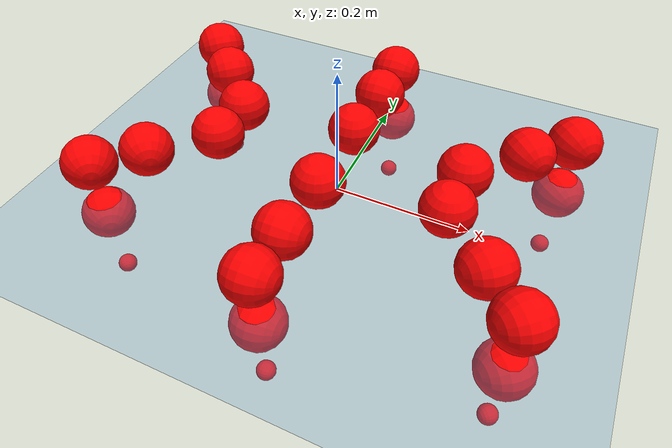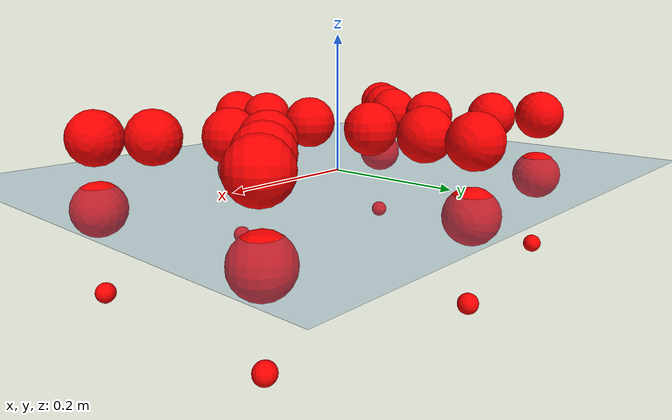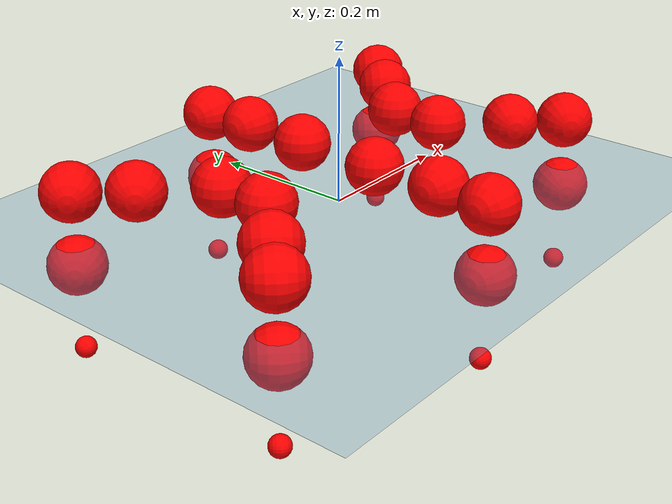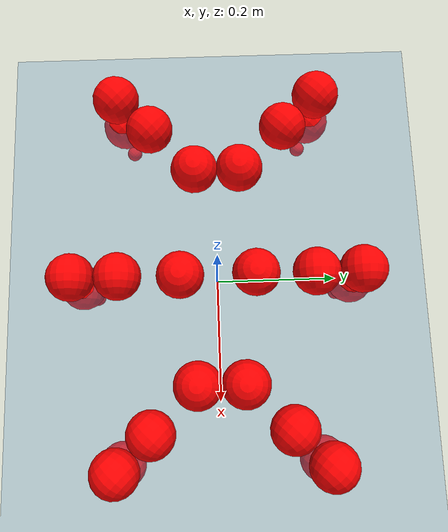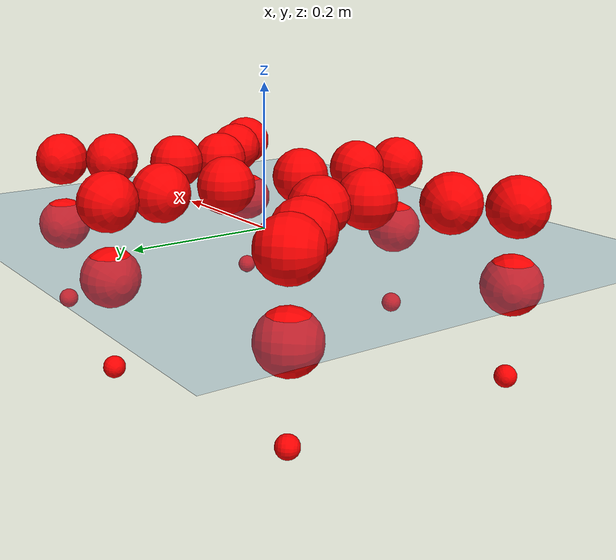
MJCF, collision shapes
<mujoco model="Golem">
  <compiler angle="radian" assetdir="assets" balanceinertia="true" inertiafromgeom="false"/>

  <option timestep="0.005" density="1.2" viscosity="2e-05"/>

  <size nkey="1"/>

  <visual>
    <quality shadowsize="8192"/>
    <map shadowclip="0.5"/>
  </visual>

  <default>
    <default class="/">
      <joint armature="0.01" damping="0.01" frictionloss="0.01"/>
      <geom contype="0" conaffinity="0" group="1" solref="-1000 -80"/>
      <site size="0.01 0.005 0.005" group="5"/>
      <general forcelimited="true" biastype="affine" gainprm="25" biasprm="0 -25 -0.5"/>
      <default class="visual">
        <geom type="mesh" group="2"/>
      </default>
      <default class="collision">
        <geom group="3"/>
      </default>
      <default class="foot">
        <geom size="0.01 0 0" condim="6" group="4" priority="1" solimp="0.015 1 0.01"/>
      </default>
      <default class="reward_collision_sphere">
        <geom group="5" rgba="1 0 0 1"/>
      </default>
    </default>
  </default>

  <asset>
    <texture type="skybox" colorspace="auto" name="//unnamed_texture_0" builtin="gradient" rgb1="0.95 0.95 0.95" rgb2="0.95 0.95 0.95" width="100" height="600"/>
    <texture type="2d" colorspace="auto" name="texplane" builtin="checker" rgb1="0.345 0.575 0.748" rgb2="0.345 0.575 0.748" markrgb="1 1 1" width="512" height="512"/>
    <material name="MatPlane" class="/" texture="texplane" texuniform="true" texrepeat="2 2" specular="0.9"/>
    <mesh name="body" class="/" file="body.stl" scale="0.001 0.001 0.001"/>
    <mesh name="coxa" class="/" file="coxa.stl" scale="0.001 0.001 0.001"/>
    <mesh name="femur" class="/" file="femur.stl" scale="0.001 0.001 0.001"/>
    <mesh name="tibia" class="/" file="tibia.stl" scale="0.001 0.001 0.001"/>
    <mesh name="tarsus" class="/" file="tarsus.stl" scale="0.001 0.001 0.001"/>
  </asset>

  <worldbody>
    <geom name="floor" class="/" size="100 100 0.125" type="plane" group="0" material="MatPlane"/>
    <light name="toplight_shadow" class="/" pos="0 0 5" dir="0.0990148 0.0990148 -0.990148" type="directional" ambient="0.04 0.04 0.04" diffuse="0.55 0.55 0.55" specular="0.12 0.12 0.12"/>
    <light name="toplight_fill" class="/" pos="0 0 5" dir="0.0990148 0.0990148 -0.990148" type="directional" castshadow="false" ambient="0.04 0.04 0.04" diffuse="0.3 0.3 0.3" specular="0.08 0.08 0.08"/>
    <body name="trunk" pos="-0.000743719 0.00223059 0.000474455" quat="1 5.48106e-05 -8.41368e-05 1.28664e-05">
      <inertial pos="0.000718907 8.64877e-05 -0.00535267" quat="0.999998 0.00123472 0.00125443 -0.000765942" mass="3.50069" diaginertia="0.0179737 0.00202802 0.0131653"/>
      <joint name="//unnamed_joint_0" type="free"/>
      <geom name="//unnamed_geom_1" class="/" pos="0 0 0.0677265" quat="1 0 0 0" type="mesh" rgba="0.9 0.9 0.9 1" mesh="body"/>
      <site name="imu" class="/" pos="0.145662 -0.00406092 0.105428" size="0.00967122"/>
      <camera name="track" class="/" pos="0 -1.44504 0" quat="0.707107 0.707107 0 0" mode="trackcom"/>
      <camera name="ego_camera" class="/" pos="0.14568 0 0.105823" quat="-0.5 -0.5 0.5 0.5"/>
      <body name="coxa_RR" pos="-0.199354 -0.0588691 0.0705425" quat="0.382319 -0.000559968 -0.000614315 -0.92403">
        <inertial pos="0.00019236 -0.0024734 0.00295866" quat="1 4.24734e-05 -5.70978e-06 3.46668e-05" mass="0.184576" diaginertia="0.0176811 0.00198597 0.0132362"/>
        <joint name="coxa_joint_RR" class="/" pos="0 0 0" axis="-0.00445033 0.00155451 -0.999989" range="-3.10908 3.14011" armature="0.00981558" damping="0.0112288" frictionloss="0.00985267"/>
        <geom name="//unnamed_geom_2" class="/" type="mesh" rgba="0.2 0.2 0.2 1" mesh="coxa"/>
        <geom name="//unnamed_geom_3" class="reward_collision_sphere" size="0.0386849" pos="-0.0336185 0 0"/>
        <body name="femur_RR" pos="0.0691682 0.000657549 -0.00103176" quat="0.500008 -0.50031 0.500381 0.499301">
          <inertial pos="-0.00171453 0.000186089 0.000943703" quat="1 0.00014016 0.000478574 -0.000350675" mass="0.182762" diaginertia="0.0178784 0.00200496 0.0134788"/>
          <joint name="femur_joint_RR" class="/" pos="0 0 0" axis="-0.000118784 0.00304811 -0.999995" range="-3.15713 3.14587" armature="0.00910776" damping="0.00521343" frictionloss="0.00972502"/>
          <geom name="//unnamed_geom_4" class="/" type="mesh" rgba="0.9 0.9 0.9 1" mesh="femur"/>
          <geom name="//unnamed_geom_5" class="reward_collision_sphere" size="0.0386849"/>
          <body name="tibia_RR" pos="0.00118151 -0.0787546 0.00037578" quat="6.51605e-05 1 9.28433e-05 -4.5135e-05">
            <inertial pos="-0.000332227 0.000275019 -0.00100751" quat="1 0.000839323 -6.75951e-05 -0.000518666" mass="0.177592" diaginertia="0.0176421 0.00200957 0.0137023"/>
            <joint name="tibia_joint_RR" class="/" pos="0 0 0" axis="0.00246362 0.00583391 0.99998" range="-3.1347 3.0877" armature="0.0100404" damping="0.0133565" frictionloss="0.00944523"/>
            <geom name="//unnamed_geom_6" class="/" type="mesh" rgba="0.2 0.2 0.2 1" mesh="tibia"/>
            <geom name="//unnamed_geom_7" class="reward_collision_sphere" size="0.0386849"/>
            <body name="tarsus_RR" pos="0.098581 -0.00170069 -0.00109905" quat="1 -1.91312e-05 1.25968e-05 -1.68333e-05">
              <inertial pos="0.0702679 0.00314345 -0.00194275" quat="0.499481 0.500582 0.500445 0.49949" mass="0.187169" diaginertia="0.0180694 0.00207177 0.0136909"/>
              <joint name="tarsus_joint_RR" class="/" pos="0 0 0" axis="0.000225013 -0.00333108 0.999994" range="-3.08887 3.12969" armature="0.00924756" damping="0.0403592" frictionloss="0.00967336"/>
              <geom name="//unnamed_geom_8" class="/" type="mesh" rgba="0.9 0.9 0.9 1" mesh="tarsus"/>
              <geom name="foot_1" class="foot" size="0.00934489" pos="0.125509 0 0" quat="0 -0.707107 0 0.707107"/>
              <geom name="//unnamed_geom_10" class="reward_collision_sphere" size="0.0386849"/>
              <geom name="//unnamed_geom_11" class="reward_collision_sphere" size="0.0145068" pos="0.120466 0 0"/>
              <site name="foot_1" class="foot" pos="0.125509 0 0" quat="0 -0.707107 0 0.707107" size="0.00967122"/>
            </body>
          </body>
        </body>
      </body>
      <body name="coxa_RM" pos="-7.11728e-05 -0.0954363 0.0664192" quat="0.70714 -0.000105801 -0.000152431 -0.707073">
        <inertial pos="0.000396754 -0.00010673 -0.000731267" quat="0.999997 -1.32668e-05 -0.00202186 -0.000967636" mass="0.176657" diaginertia="0.0174523 0.00193088 0.0131035"/>
        <joint name="coxa_joint_RM" class="/" pos="0 0 0" axis="0.00100821 -0.00343764 -0.999994" range="-3.12114 3.15893" armature="0.00982559" damping="0.00631229" frictionloss="0.00843477"/>
        <geom name="//unnamed_geom_12" class="/" type="mesh" rgba="0.2 0.2 0.2 1" mesh="coxa"/>
        <geom name="//unnamed_geom_13" class="reward_collision_sphere" size="0.0386849" pos="-0.0336185 0 0"/>
        <body name="femur_RM" pos="0.0664738 -0.000201528 0.00148196" quat="0.500161 -0.499879 0.500188 0.499771">
          <inertial pos="0.000318652 -0.000640984 0.00147335" quat="0.999987 -0.00486176 0.00092632 -0.000776688" mass="0.179756" diaginertia="0.0171474 0.00198959 0.0133019"/>
          <joint name="femur_joint_RM" class="/" pos="0 0 0" axis="-0.00468388 0.00308018 -0.999984" range="-3.15946 3.13812" armature="0.00963147" damping="0" frictionloss="0.00942502"/>
          <geom name="//unnamed_geom_14" class="/" type="mesh" rgba="0.9 0.9 0.9 1" mesh="femur"/>
          <geom name="//unnamed_geom_15" class="reward_collision_sphere" size="0.0386849"/>
          <body name="tibia_RM" pos="0.00197145 -0.0751665 -0.000962378" quat="-6.54649e-05 1 -0.000152951 8.66794e-05">
            <inertial pos="-0.00252313 -0.00266079 -0.000894315" quat="0.999921 -0.0114189 0.00401625 0.00331925" mass="0.180646" diaginertia="0.0175603 0.0019665 0.0128578"/>
            <joint name="tibia_joint_RM" class="/" pos="0 0 0" axis="-0.000187592 0.000254985 1" stiffness="0.000565394" range="-3.12791 3.13429" armature="0.00964359" damping="0.0192955" frictionloss="0.00985488"/>
            <geom name="//unnamed_geom_16" class="/" type="mesh" rgba="0.2 0.2 0.2 1" mesh="tibia"/>
            <geom name="//unnamed_geom_17" class="reward_collision_sphere" size="0.0386849"/>
            <body name="tarsus_RM" pos="0.09735 -0.0003771 -0.000514895" quat="1 0.000274084 -0.000158584 0.000284434">
              <inertial pos="0.0668146 0.000593196 0.000831684" quat="0.499542 0.50024 0.499584 0.500634" mass="0.182907" diaginertia="0.0177137 0.00200599 0.0133801"/>
              <joint name="tarsus_joint_RM" class="/" pos="0 0 0" axis="-0.00310345 0.00108305 0.999995" range="-3.13713 3.12807" armature="0.00847249" damping="0.0012363" frictionloss="0.00967489"/>
              <geom name="//unnamed_geom_18" class="/" type="mesh" rgba="0.9 0.9 0.9 1" mesh="tarsus"/>
              <geom name="foot_2" class="foot" size="0.00921011" pos="0.125509 0 0" quat="0 -0.707107 0 0.707107"/>
              <geom name="//unnamed_geom_20" class="reward_collision_sphere" size="0.0386849"/>
              <geom name="//unnamed_geom_21" class="reward_collision_sphere" size="0.0145068" pos="0.120466 0 0"/>
              <site name="foot_2" class="foot" pos="0.125509 0 0" quat="0 -0.707107 0 0.707107" size="0.00967122"/>
            </body>
          </body>
        </body>
      </body>
      <body name="coxa_RF" pos="0.19824 -0.0614055 0.0667742" quat="0.923921 0.000543806 0.00011936 -0.382584">
        <inertial pos="0.00221449 -5.00469e-05 0.000461498" quat="0.999999 -0.00110987 6.00518e-06 2.7622e-05" mass="0.1808" diaginertia="0.0181744 0.00194395 0.0128902"/>
        <joint name="coxa_joint_RF" class="/" pos="0 0 0" axis="-0.00351933 0.00225943 -0.999991" range="-3.15029 3.13881" armature="0.00975372" damping="0.00928166" frictionloss="0.00953442"/>
        <geom name="//unnamed_geom_22" class="/" type="mesh" rgba="0.2 0.2 0.2 1" mesh="coxa"/>
        <geom name="//unnamed_geom_23" class="reward_collision_sphere" size="0.0386849" pos="-0.0336185 0 0"/>
        <body name="femur_RF" pos="0.0684699 -0.00125903 -0.00098393" quat="0.500022 -0.500017 0.499926 0.500036">
          <inertial pos="-0.000401829 0.000630629 -0.00147514" quat="0.999986 -0.00115139 -0.0036477 0.00354794" mass="0.178775" diaginertia="0.0178167 0.00203633 0.0131553"/>
          <joint name="femur_joint_RF" class="/" pos="0 0 0" axis="-0.000929657 0.000978426 -0.999999" range="-3.09864 3.1442" armature="0.010189" damping="0" frictionloss="0.00926464"/>
          <geom name="//unnamed_geom_24" class="/" type="mesh" rgba="0.9 0.9 0.9 1" mesh="femur"/>
          <geom name="//unnamed_geom_25" class="reward_collision_sphere" size="0.0386849"/>
          <body name="tibia_RF" pos="0.000444914 -0.0772721 -0.000366608" quat="-4.2363e-05 1 -3.87427e-05 3.37445e-05">
            <inertial pos="-0.0009477 0.0011714 0.0006556" quat="0.999986 0.00446711 0.00141159 0.00226228" mass="0.180235" diaginertia="0.0181615 0.00195119 0.0134829"/>
            <joint name="tibia_joint_RF" class="/" pos="0 0 0" axis="0.000430856 0.00242886 0.999997" range="-3.13561 3.15653" armature="0.00943602" damping="0.00977408" frictionloss="0.008844"/>
            <geom name="//unnamed_geom_26" class="/" type="mesh" rgba="0.2 0.2 0.2 1" mesh="tibia"/>
            <geom name="//unnamed_geom_27" class="reward_collision_sphere" size="0.0386849"/>
            <body name="tarsus_RF" pos="0.0978867 0.00165879 0.00163575" quat="0.999999 0.000527573 0.00110813 8.38261e-05">
              <inertial pos="0.0662792 -0.00236434 0.000964191" quat="0.494602 0.496169 0.498261 0.510805" mass="0.175971" diaginertia="0.0180601 0.00189375 0.0132183"/>
              <joint name="tarsus_joint_RF" class="/" pos="0 0 0" axis="0.00793262 0.00215186 0.999966" range="-3.09172 3.13569" armature="0.0108577" damping="0.00188295" frictionloss="0.00971309"/>
              <geom name="//unnamed_geom_28" class="/" type="mesh" rgba="0.9 0.9 0.9 1" mesh="tarsus"/>
              <geom name="foot_3" class="foot" size="0.0101205" pos="0.125509 0 0" quat="0 -0.707107 0 0.707107"/>
              <geom name="//unnamed_geom_30" class="reward_collision_sphere" size="0.0386849"/>
              <geom name="//unnamed_geom_31" class="reward_collision_sphere" size="0.0145068" pos="0.120466 0 0"/>
              <site name="foot_3" class="foot" pos="0.125509 0 0" quat="0 -0.707107 0 0.707107" size="0.00967122"/>
            </body>
          </body>
        </body>
      </body>
      <body name="coxa_LR" pos="-0.199686 0.0626425 0.0700419" quat="0.382218 -9.01266e-05 -5.08021e-05 0.924072">
        <inertial pos="0.0011971 -0.00279249 -0.000507405" quat="0.999965 -0.00772432 -0.00130562 -0.00287305" mass="0.174356" diaginertia="0.0170229 0.00196461 0.0129172"/>
        <joint name="coxa_joint_LR" class="/" pos="0 0 0" axis="-0.00206195 -0.00221312 -0.999995" range="-3.13091 3.18697" armature="0.00856781" damping="0.0085957" frictionloss="0.00988934"/>
        <geom name="//unnamed_geom_32" class="/" type="mesh" rgba="0.2 0.2 0.2 1" mesh="coxa"/>
        <geom name="//unnamed_geom_33" class="reward_collision_sphere" size="0.0386849" pos="-0.0336185 0 0"/>
        <body name="femur_LR" pos="0.0703037 -0.0020749 -0.00181517" quat="0.499939 -0.500525 0.499692 0.499843">
          <inertial pos="-0.000966639 -0.000540162 -0.00117678" quat="0.999927 0.00887238 0.0080096 0.00178319" mass="0.181057" diaginertia="0.0178993 0.00197962 0.0137819"/>
          <joint name="femur_joint_LR" class="/" pos="0 0 0" axis="-0.000591455 -0.000657858 1" range="-3.08856 3.10536" armature="0.00984027" damping="0" frictionloss="0.00968453"/>
          <geom name="//unnamed_geom_34" class="/" type="mesh" rgba="0.9 0.9 0.9 1" mesh="femur"/>
          <geom name="//unnamed_geom_35" class="reward_collision_sphere" size="0.0386849"/>
          <body name="tibia_LR" pos="-0.00103718 -0.0796928 -0.00264827" quat="7.84286e-06 1 1.15915e-05 -1.39596e-06">
            <inertial pos="-0.000118282 -0.00221248 0.00156738" quat="0.999998 -0.00143245 -0.00028803 -0.00165299" mass="0.181356" diaginertia="0.0179438 0.00196741 0.0133409"/>
            <joint name="tibia_joint_LR" class="/" pos="0 0 0" axis="-0.000838049 0.000451667 -1" range="-3.17388 3.14416" armature="0.00949887" damping="0" frictionloss="0.00997376"/>
            <geom name="//unnamed_geom_36" class="/" type="mesh" rgba="0.2 0.2 0.2 1" mesh="tibia"/>
            <geom name="//unnamed_geom_37" class="reward_collision_sphere" size="0.0386849"/>
            <body name="tarsus_LR" pos="0.10061 0.000452846 7.2939e-05" quat="1 -0.000271883 -0.000891796 -0.00034869">
              <inertial pos="0.0697745 0.000454392 -8.74515e-05" quat="0.501997 0.497536 0.501908 0.498543" mass="0.182653" diaginertia="0.0175154 0.00196051 0.0131194"/>
              <joint name="tarsus_joint_LR" class="/" pos="0 0 0" axis="-0.000695802 -9.8265e-05 -1" range="-3.18067 3.13865" armature="0.00965621" damping="0.0287564" frictionloss="0.00860428"/>
              <geom name="//unnamed_geom_38" class="/" type="mesh" rgba="0.9 0.9 0.9 1" mesh="tarsus"/>
              <geom name="foot_4" class="foot" size="0.00941398" pos="0.125509 0 0" quat="0.707107 0 -0.707107 0"/>
              <geom name="//unnamed_geom_40" class="reward_collision_sphere" size="0.0386849"/>
              <geom name="//unnamed_geom_41" class="reward_collision_sphere" size="0.0145068" pos="0.120466 0 0"/>
              <site name="foot_4" class="foot" pos="0.125509 0 0" quat="0.707107 0 -0.707107 0" size="0.00967122"/>
            </body>
          </body>
        </body>
      </body>
      <body name="coxa_LM" pos="-0.000832545 0.0937809 0.0675517" quat="0.707106 6.75162e-06 -3.59487e-05 0.707107">
        <inertial pos="-0.00146263 0.000965068 -0.000682545" quat="1 -0.000680906 -8.14167e-05 -0.000299669" mass="0.181441" diaginertia="0.017289 0.00191343 0.0136845"/>
        <joint name="coxa_joint_LM" class="/" pos="0 0 0" axis="0.00432728 0.00102642 -0.99999" stiffness="0.0025471" range="-3.13779 3.13586" armature="0.0108367" damping="0.0014352" frictionloss="0.00929345"/>
        <geom name="//unnamed_geom_42" class="/" type="mesh" rgba="0.2 0.2 0.2 1" mesh="coxa"/>
        <geom name="//unnamed_geom_43" class="reward_collision_sphere" size="0.0386849" pos="-0.0336185 0 0"/>
        <body name="femur_LM" pos="0.0627366 -0.00173489 0.00169962" quat="0.499964 -0.500057 0.500065 0.499913">
          <inertial pos="0.00169335 -0.000337863 0.00215057" quat="1 4.67625e-05 -6.7547e-05 -5.04931e-05" mass="0.180722" diaginertia="0.0175817 0.00196814 0.0133817"/>
          <joint name="femur_joint_LM" class="/" pos="0 0 0" axis="-0.000826764 0.00693227 0.999976" range="-3.14154 3.10812" armature="0.00945574" damping="0.00320723" frictionloss="0.0101325"/>
          <geom name="//unnamed_geom_44" class="/" type="mesh" rgba="0.9 0.9 0.9 1" mesh="femur"/>
          <geom name="//unnamed_geom_45" class="reward_collision_sphere" size="0.0386849"/>
          <body name="tibia_LM" pos="0.00141706 -0.0752543 0.00218933" quat="-0.000203492 1 -0.000110331 -1.75899e-05">
            <inertial pos="-0.000273036 -0.00266722 0.00260163" quat="0.999918 -0.0119166 0.00414573 -0.00214613" mass="0.176089" diaginertia="0.0177936 0.00193165 0.0129992"/>
            <joint name="tibia_joint_LM" class="/" pos="0 0 0" axis="0.000910583 -0.00677686 -0.999977" range="-3.14252 3.09439" armature="0.00926462" damping="0.00226609" frictionloss="0.00977252"/>
            <geom name="//unnamed_geom_46" class="/" type="mesh" rgba="0.2 0.2 0.2 1" mesh="tibia"/>
            <geom name="//unnamed_geom_47" class="reward_collision_sphere" size="0.0386849"/>
            <body name="tarsus_LM" pos="0.0976911 -0.000803846 0.00143759" quat="1 -0.000288317 0.000336895 0.000143371">
              <inertial pos="0.0671308 0.000312938 -0.00193301" quat="0.49319 0.494468 0.50569 0.506501" mass="0.1864" diaginertia="0.0178479 0.00193916 0.0131738"/>
              <joint name="tarsus_joint_LM" class="/" pos="0 0 0" axis="-0.00469679 -0.00794113 -0.999957" range="-3.14806 3.09579" armature="0.00996469" damping="0" frictionloss="0.00962707"/>
              <geom name="//unnamed_geom_48" class="/" type="mesh" rgba="0.9 0.9 0.9 1" mesh="tarsus"/>
              <geom name="foot_5" class="foot" size="0.0096368" pos="0.125509 0 0" quat="0.707107 0 -0.707107 0"/>
              <geom name="//unnamed_geom_50" class="reward_collision_sphere" size="0.0386849"/>
              <geom name="//unnamed_geom_51" class="reward_collision_sphere" size="0.0145068" pos="0.120466 0 0"/>
              <site name="foot_5" class="foot" pos="0.125509 0 0" quat="0.707107 0 -0.707107 0" size="0.00967122"/>
            </body>
          </body>
        </body>
      </body>
      <body name="coxa_LF" pos="0.198414 0.0611008 0.069449" quat="0.923458 6.74252e-05 -0.000211984 0.3837">
        <inertial pos="-0.000893463 0.00109308 -0.000566786" quat="0.999918 -0.0102224 0.00153673 -0.00752206" mass="0.185352" diaginertia="0.0176357 0.00201486 0.0127762"/>
        <joint name="coxa_joint_LF" class="/" pos="0 0 0" axis="9.23744e-05 -1.88649e-05 -1" range="-3.13815 3.14156" armature="0.00985208" damping="0.00349826" frictionloss="0.00935515"/>
        <geom name="//unnamed_geom_52" class="/" type="mesh" rgba="0.2 0.2 0.2 1" mesh="coxa"/>
        <geom name="//unnamed_geom_53" class="reward_collision_sphere" size="0.0386849" pos="-0.0336185 0 0"/>
        <body name="femur_LF" pos="0.0660893 0.000791396 0.0001412" quat="0.500037 -0.50013 0.499883 0.49995">
          <inertial pos="0.00218226 0.000795885 0.00237453" quat="0.999989 -0.00281086 0.00218817 0.00290046" mass="0.177993" diaginertia="0.0171087 0.00196453 0.0127588"/>
          <joint name="femur_joint_LF" class="/" pos="0 0 0" axis="-3.68913e-05 2.64415e-05 1" range="-3.13442 3.19007" armature="0.010254" damping="0" frictionloss="0.00993663"/>
          <geom name="//unnamed_geom_54" class="/" type="mesh" rgba="0.9 0.9 0.9 1" mesh="femur"/>
          <geom name="//unnamed_geom_55" class="reward_collision_sphere" size="0.0386849"/>
          <body name="tibia_LF" pos="0.00267593 -0.0787899 0.000247152" quat="8.46484e-05 1 -0.000255839 0.000413799">
            <inertial pos="0.000419642 -0.000970837 -0.000135829" quat="1 0.000103582 0.000220662 0.000153237" mass="0.181092" diaginertia="0.0175685 0.00198126 0.0133172"/>
            <joint name="tibia_joint_LF" class="/" pos="0 0 0" axis="-0.00509324 -0.00372396 -0.99998" stiffness="0.000442529" range="-3.12381 3.15973" armature="0.00855142" damping="0" frictionloss="0.00917795"/>
            <geom name="//unnamed_geom_56" class="/" type="mesh" rgba="0.2 0.2 0.2 1" mesh="tibia"/>
            <geom name="//unnamed_geom_57" class="reward_collision_sphere" size="0.0386849"/>
            <body name="tarsus_LF" pos="0.0998289 0.000708813 -0.00054134" quat="1 -9.61004e-05 -0.000258274 -0.000107717">
              <inertial pos="0.0660929 -0.000574434 0.000449264" quat="0.500114 0.49987 0.500009 0.500007" mass="0.178538" diaginertia="0.0178508 0.00197874 0.0133666"/>
              <joint name="tarsus_joint_LF" class="/" pos="0 0 0" axis="2.04932e-05 -4.32364e-05 -1" stiffness="0.0197454" range="-3.18478 3.186" armature="0.00964021" damping="0" frictionloss="0.00940978"/>
              <geom name="//unnamed_geom_58" class="/" type="mesh" rgba="0.9 0.9 0.9 1" mesh="tarsus"/>
              <geom name="foot_6" class="foot" size="0.00946587" pos="0.125509 0 0" quat="0.707107 0 -0.707107 0"/>
              <geom name="//unnamed_geom_60" class="reward_collision_sphere" size="0.0386849"/>
              <geom name="//unnamed_geom_61" class="reward_collision_sphere" size="0.0145068" pos="0.120466 0 0"/>
              <site name="foot_6" class="foot" pos="0.125509 0 0" quat="0.707107 0 -0.707107 0" size="0.00967122"/>
            </body>
          </body>
        </body>
      </body>
    </body>
  </worldbody>

  <contact>
    <pair class="/" geom1="floor" geom2="foot_1" name="//unnamed_contact_0"/>
    <pair class="/" geom1="floor" geom2="foot_2" name="//unnamed_contact_1"/>
    <pair class="/" geom1="floor" geom2="foot_3" name="//unnamed_contact_2"/>
    <pair class="/" geom1="floor" geom2="foot_4" name="//unnamed_contact_3"/>
    <pair class="/" geom1="floor" geom2="foot_5" name="//unnamed_contact_4"/>
    <pair class="/" geom1="floor" geom2="foot_6" name="//unnamed_contact_5"/>
  </contact>

  <actuator>
    <general name="coxa_joint_RR" class="/" joint="coxa_joint_RR" forcerange="-6.90463 6.90463" gainprm="23.0923" biasprm="0 -23.0923 -0.514199"/>
    <general name="femur_joint_RR" class="/" joint="femur_joint_RR" forcerange="-7.0825 7.0825" gainprm="23.0923" biasprm="0 -23.0923 -0.514199"/>
    <general name="tibia_joint_RR" class="/" joint="tibia_joint_RR" forcerange="-6.40579 6.40579" gainprm="23.0923" biasprm="0 -23.0923 -0.514199"/>
    <general name="tarsus_joint_RR" class="/" joint="tarsus_joint_RR" forcerange="-6.86218 6.86218" gainprm="23.0923" biasprm="0 -23.0923 -0.514199"/>
    <general name="coxa_joint_RM" class="/" joint="coxa_joint_RM" forcerange="-7.07452 7.07452" gainprm="23.0923" biasprm="0 -23.0923 -0.514199"/>
    <general name="femur_joint_RM" class="/" joint="femur_joint_RM" forcerange="-7.20912 7.20912" gainprm="23.0923" biasprm="0 -23.0923 -0.514199"/>
    <general name="tibia_joint_RM" class="/" joint="tibia_joint_RM" forcerange="-6.38356 6.38356" gainprm="23.0923" biasprm="0 -23.0923 -0.514199"/>
    <general name="tarsus_joint_RM" class="/" joint="tarsus_joint_RM" forcerange="-7.33571 7.33571" gainprm="23.0923" biasprm="0 -23.0923 -0.514199"/>
    <general name="coxa_joint_RF" class="/" joint="coxa_joint_RF" forcerange="-6.91569 6.91569" gainprm="23.0923" biasprm="0 -23.0923 -0.514199"/>
    <general name="femur_joint_RF" class="/" joint="femur_joint_RF" forcerange="-7.73863 7.73863" gainprm="23.0923" biasprm="0 -23.0923 -0.514199"/>
    <general name="tibia_joint_RF" class="/" joint="tibia_joint_RF" forcerange="-7.0387 7.0387" gainprm="23.0923" biasprm="0 -23.0923 -0.514199"/>
    <general name="tarsus_joint_RF" class="/" joint="tarsus_joint_RF" forcerange="-7.73582 7.73582" gainprm="23.0923" biasprm="0 -23.0923 -0.514199"/>
    <general name="coxa_joint_LR" class="/" joint="coxa_joint_LR" forcerange="-6.5621 6.5621" gainprm="23.0923" biasprm="0 -23.0923 -0.514199"/>
    <general name="femur_joint_LR" class="/" joint="femur_joint_LR" forcerange="-6.84765 6.84765" gainprm="23.0923" biasprm="0 -23.0923 -0.514199"/>
    <general name="tibia_joint_LR" class="/" joint="tibia_joint_LR" forcerange="-7.17576 7.17576" gainprm="23.0923" biasprm="0 -23.0923 -0.514199"/>
    <general name="tarsus_joint_LR" class="/" joint="tarsus_joint_LR" forcerange="-7.14453 7.14453" gainprm="23.0923" biasprm="0 -23.0923 -0.514199"/>
    <general name="coxa_joint_LM" class="/" joint="coxa_joint_LM" forcerange="-6.99422 6.99422" gainprm="23.0923" biasprm="0 -23.0923 -0.514199"/>
    <general name="femur_joint_LM" class="/" joint="femur_joint_LM" forcerange="-7.02612 7.02612" gainprm="23.0923" biasprm="0 -23.0923 -0.514199"/>
    <general name="tibia_joint_LM" class="/" joint="tibia_joint_LM" forcerange="-6.43464 6.43464" gainprm="23.0923" biasprm="0 -23.0923 -0.514199"/>
    <general name="tarsus_joint_LM" class="/" joint="tarsus_joint_LM" forcerange="-6.75625 6.75625" gainprm="23.0923" biasprm="0 -23.0923 -0.514199"/>
    <general name="coxa_joint_LF" class="/" joint="coxa_joint_LF" forcerange="-6.8181 6.8181" gainprm="23.0923" biasprm="0 -23.0923 -0.514199"/>
    <general name="femur_joint_LF" class="/" joint="femur_joint_LF" forcerange="-6.52664 6.52664" gainprm="23.0923" biasprm="0 -23.0923 -0.514199"/>
    <general name="tibia_joint_LF" class="/" joint="tibia_joint_LF" forcerange="-7.08916 7.08916" gainprm="23.0923" biasprm="0 -23.0923 -0.514199"/>
    <general name="tarsus_joint_LF" class="/" joint="tarsus_joint_LF" forcerange="-7.04858 7.04858" gainprm="23.0923" biasprm="0 -23.0923 -0.514199"/>
  </actuator>

  <sensor>
    <gyro site="imu" name="imu_angular_velocity"/>
    <velocimeter site="imu" name="imu_linear_velocity"/>
    <framelinvel objtype="site" objname="foot_1" name="foot_1_global_linear_velocity"/>
    <framelinvel objtype="site" objname="foot_2" name="foot_2_global_linear_velocity"/>
    <framelinvel objtype="site" objname="foot_3" name="foot_3_global_linear_velocity"/>
    <framelinvel objtype="site" objname="foot_4" name="foot_4_global_linear_velocity"/>
    <framelinvel objtype="site" objname="foot_5" name="foot_5_global_linear_velocity"/>
    <framelinvel objtype="site" objname="foot_6" name="foot_6_global_linear_velocity"/>
  </sensor>

  <keyframe>
    <key name="home" qpos="0 0 0.1457 1 0 0 0 0 0 0 0 0 0 0 0 0 0 0 0 0 0 0 0 0 0 0 0 0 0 0 0"/>
  </keyframe>
</mujoco>
